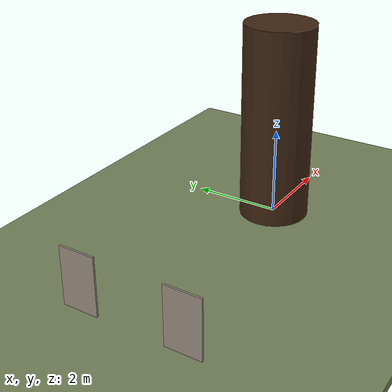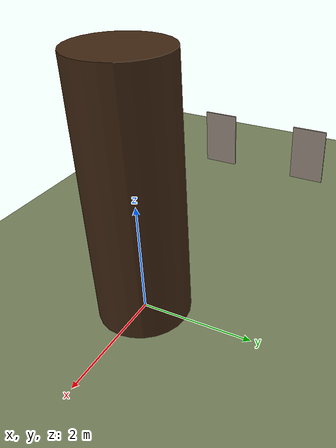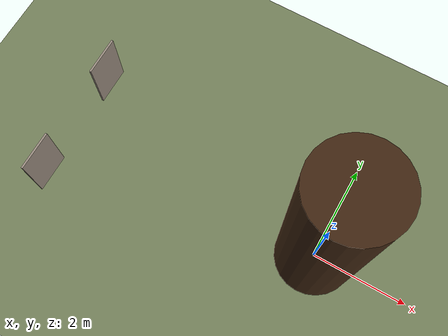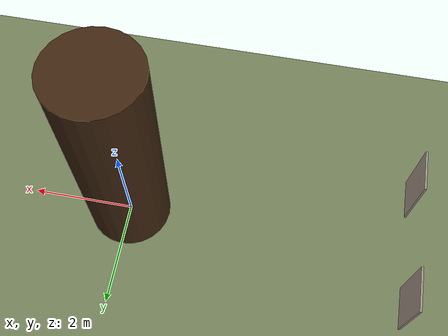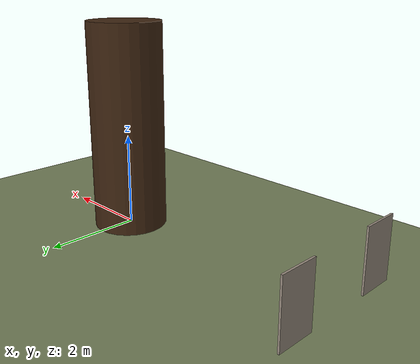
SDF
<sdf version="1.9">
 <world name="fly_ego_benchmark">
  <physics name="fixed" type="ignored">
   <max_step_size>0.001</max_step_size>
   <real_time_factor>1.0</real_time_factor>
  </physics>
  <plugin filename="gz-sim-physics-system" name="gz::sim::systems::Physics"/>
  <plugin filename="gz-sim-user-commands-system" name="gz::sim::systems::UserCommands"/>
  <plugin filename="gz-sim-scene-broadcaster-system" name="gz::sim::systems::SceneBroadcaster"/>
  <plugin filename="gz-sim-sensors-system" name="gz::sim::systems::Sensors">
   <render_engine>ogre2</render_engine>
  </plugin>
  <plugin filename="gz-sim-imu-system" name="gz::sim::systems::Imu"/>
  <plugin filename="gz-sim-navsat-system" name="gz::sim::systems::NavSat"/>
  <plugin filename="gz-sim-air-pressure-system" name="gz::sim::systems::AirPressure"/>
  <plugin filename="gz-sim-magnetometer-system" name="gz::sim::systems::Magnetometer"/>
  <plugin filename="gz-sim-contact-system" name="gz::sim::systems::Contact"/>
  <gravity>0 0 -9.81</gravity>
  <spherical_coordinates>
   <surface_model>EARTH_WGS84</surface_model>
   <world_frame_orientation>ENU</world_frame_orientation>
   <latitude_deg>47.397742</latitude_deg>
   <longitude_deg>8.545594</longitude_deg>
   <elevation>488</elevation>
   <heading_deg>0</heading_deg>
  </spherical_coordinates>
  <light name="sun" type="directional">
   <pose>0 0 10 0 0 0</pose>
   <diffuse>.8 .8 .8 1</diffuse>
   <direction>-.5 .1 -1</direction>
  </light>
  <model name="ground">
   <static>true</static>
   <pose>0 0 -0.1 0 0 0</pose>
   <link name="body">
    <collision name="collision"><geometry><box><size>100 100 .2</size></box></geometry></collision>
    <visual name="visual">
     <geometry><box><size>100 100 .2</size></box></geometry>
     <material>
      <ambient>.45 .5 .35 1</ambient>
      <diffuse>.45 .5 .35 1</diffuse>
      <pbr><metal><albedo_map>ground_albedo.png</albedo_map></metal></pbr>
     </material>
    </visual>
   </link>
  </model>
  <model name="wall_0">
   <static>true</static>
   <pose>-5.5 -1.15 0.75 0 0 0</pose>
   <link name="body">
    <collision name="collision">
     <geometry><box><size>0.03999999999999915 0.8 1.2999999999999998</size></box></geometry>
    </collision>
    <visual name="visual">
     <geometry><box><size>0.03999999999999915 0.8 1.2999999999999998</size></box></geometry>
     <material>
      <ambient>.6 .55 .5 1</ambient>
      <diffuse>.6 .55 .5 1</diffuse>
      <pbr><metal><albedo_map>board_albedo.png</albedo_map></metal></pbr>
     </material>
    </visual>
    <sensor name="benchmark_contact" type="contact">
     <contact><collision>collision</collision><topic>/benchmark/contacts</topic></contact>
     <always_on>1</always_on>
     <update_rate>100</update_rate>
    </sensor>
   </link>
  </model>
  <model name="wall_1">
   <static>true</static>
   <pose>-5.5 1.15 0.75 0 0 0</pose>
   <link name="body">
    <collision name="collision">
     <geometry><box><size>0.03999999999999915 0.8 1.2999999999999998</size></box></geometry>
    </collision>
    <visual name="visual">
     <geometry><box><size>0.03999999999999915 0.8 1.2999999999999998</size></box></geometry>
     <material>
      <ambient>.6 .55 .5 1</ambient>
      <diffuse>.6 .55 .5 1</diffuse>
      <pbr><metal><albedo_map>board_albedo.png</albedo_map></metal></pbr>
     </material>
    </visual>
    <sensor name="benchmark_contact" type="contact">
     <contact><collision>collision</collision><topic>/benchmark/contacts</topic></contact>
     <always_on>1</always_on>
     <update_rate>100</update_rate>
    </sensor>
   </link>
  </model>
  <model name="tree_0">
   <static>true</static>
   <pose>0.0 0.0 2.25 0 0 0</pose>
   <link name="body">
    <collision name="collision">
     <geometry><cylinder><radius>0.8</radius><length>4.5</length></cylinder></geometry>
    </collision>
    <visual name="visual">
     <geometry><cylinder><radius>0.8</radius><length>4.5</length></cylinder></geometry>
     <material>
      <ambient>.25 .15 .07 1</ambient>
      <diffuse>.25 .15 .07 1</diffuse>
      <pbr><metal><albedo_map>obstacle_albedo.png</albedo_map></metal></pbr>
     </material>
    </visual>
    <sensor name="benchmark_contact" type="contact">
     <contact><collision>collision</collision><topic>/benchmark/contacts</topic></contact>
     <always_on>1</always_on>
     <update_rate>100</update_rate>
    </sensor>
   </link>
  </model>
 </world>
</sdf>
